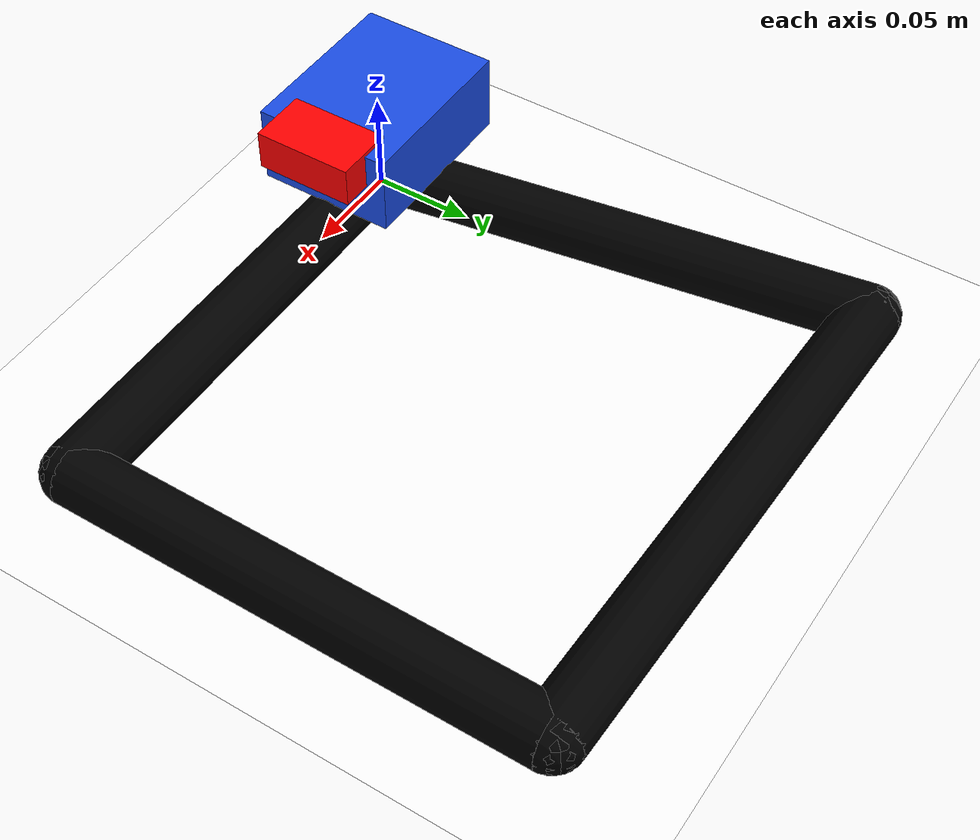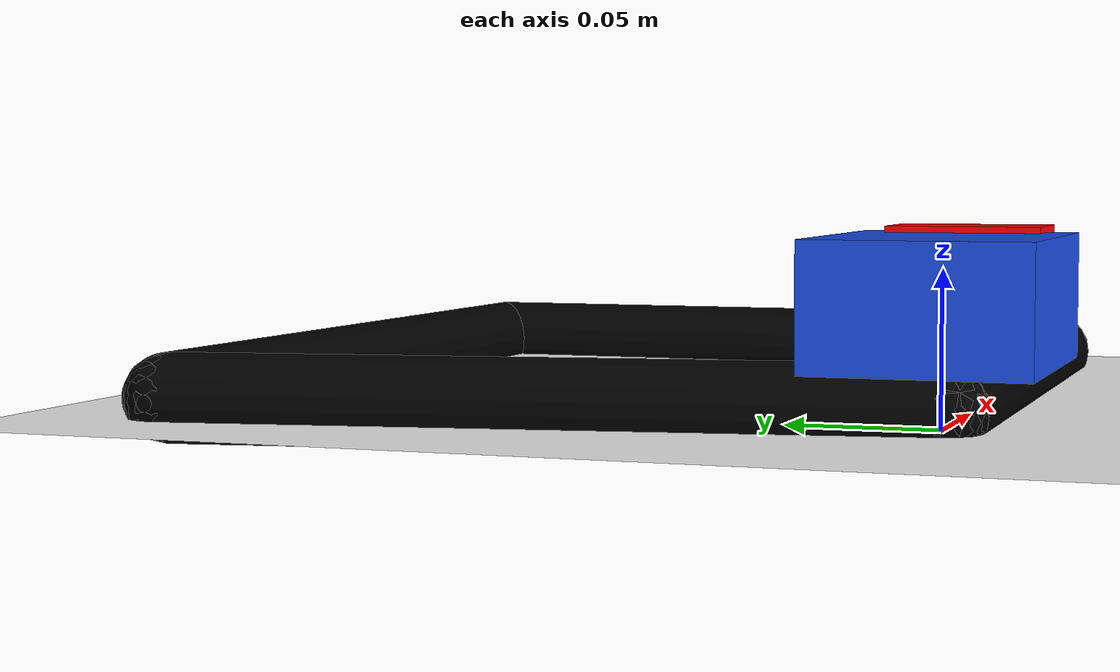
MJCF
<mujoco model="measured_square_racetrack">
  <compiler angle="degree"/>
  <option timestep="0.01" gravity="0 0 -9.81"/>
  <visual>
    <global azimuth="90" elevation="-90"/>
    <rgba haze="1 1 1 1"/>
    <headlight ambient="0.8 0.8 0.8" diffuse="0.4 0.4 0.4" specular="0 0 0"/>
  </visual>
  <asset>
    <material name="floor_mat" rgba="1 1 1 1"/>
    <material name="track_mat" rgba="0 0 0 1"/>
    <material name="robot_mat" rgba="0.1 0.3 0.9 1"/>
    <material name="front_mat" rgba="1 0 0 1"/>
  </asset>
  <worldbody>
    <geom name="floor" type="plane" pos="0.095043 0.123397 0" size="0.769915 0.746793 0.02" material="floor_mat"/>
    <geom name="ground_truth_0000" type="capsule" fromto="0.000000 0.000000 0.006 0.230000 0.000000 0.006" size="0.015000" material="track_mat" contype="0" conaffinity="0"/>
    <geom name="ground_truth_0001" type="capsule" fromto="0.230000 0.000000 0.006 0.230000 0.240000 0.006" size="0.015000" material="track_mat" contype="0" conaffinity="0"/>
    <geom name="ground_truth_0002" type="capsule" fromto="0.230000 0.240000 0.006 -0.039915 0.246793 0.006" size="0.015000" material="track_mat" contype="0" conaffinity="0"/>
    <geom name="ground_truth_0003" type="capsule" fromto="-0.039915 0.246793 0.006 0.000000 0.000000 0.006" size="0.015000" material="track_mat" contype="0" conaffinity="0"/>
    <body name="pololu" pos="0.000000 0.000000 0.040000" quat="1.000000 0 0 0.000000">
      <freejoint name="pololu_free"/>
      <geom name="robot_body" type="box" size="0.045 0.035 0.02" material="robot_mat"/>
      <geom name="robot_front" type="box" pos="0.045 0 0.012" size="0.015 0.025 0.01" material="front_mat"/>
    </body>
  </worldbody>
</mujoco>
